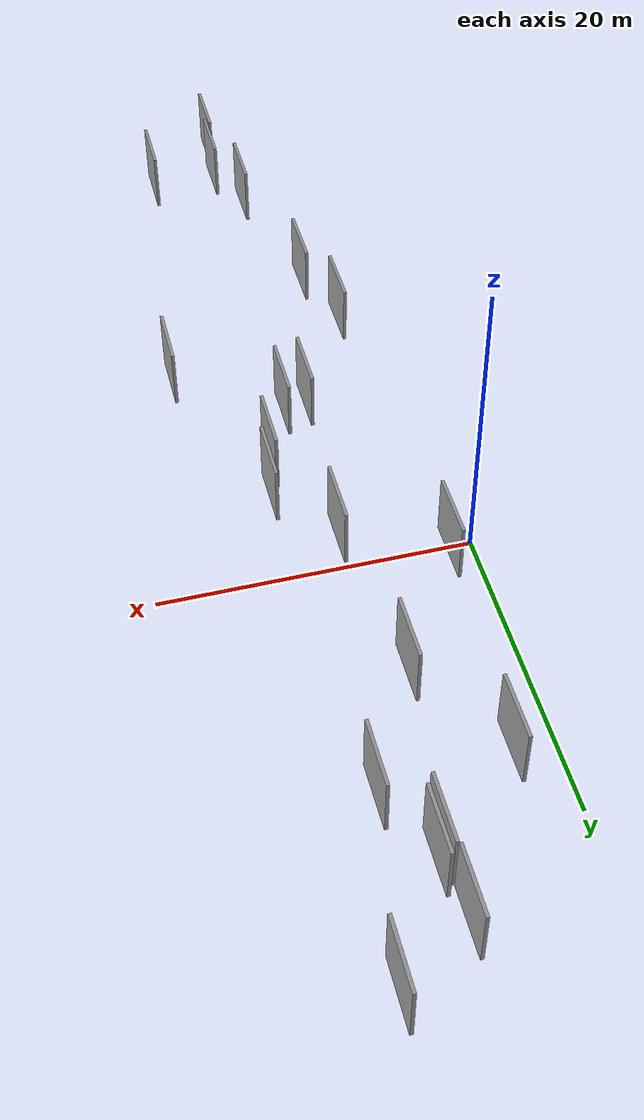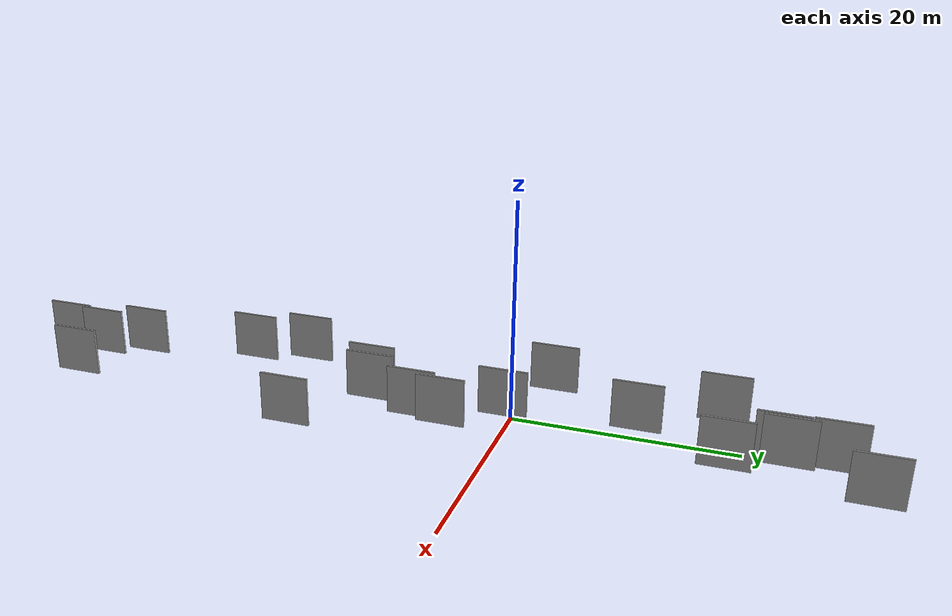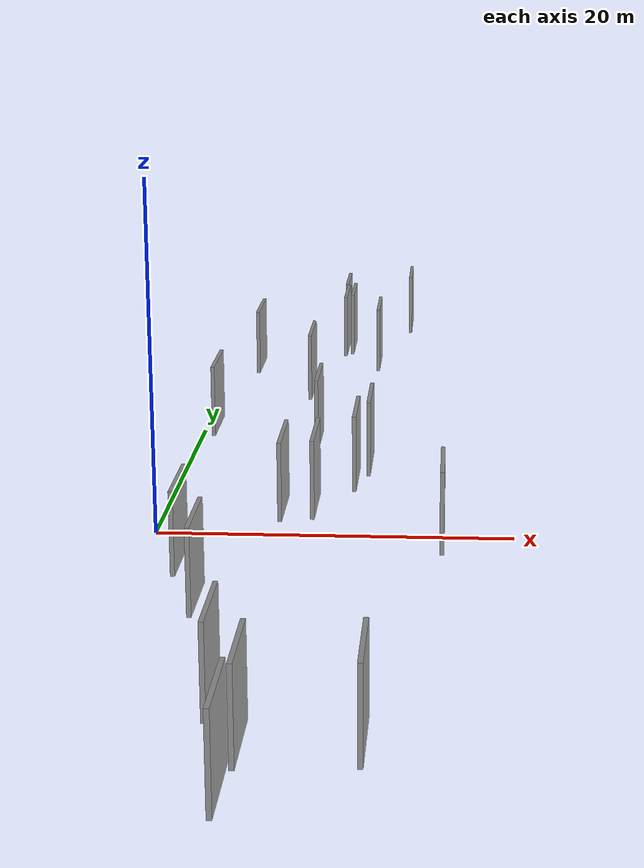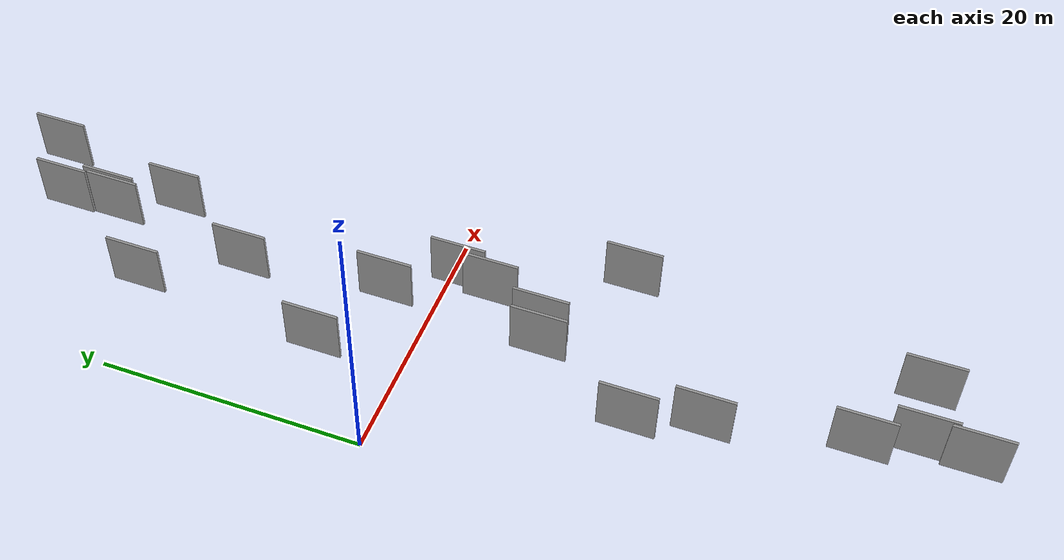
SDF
<sdf version="1.6">
 <world name="default">
  <scene>
   <sky><clouds><speed>12</speed></clouds></sky>
   <ambient>0.4 0.4 0.4 1</ambient>
   <background>0.7 0.7 0.7 1</background>
   <shadows>1</shadows>
  </scene>
  <gravity>0 0 -9.8066</gravity>
  <magnetic_field>6e-06 2.3e-05 -4.2e-05</magnetic_field>
  <physics default="0" name="default_physics" type="ode">
   <ode>
    <solver>
     <type>quick</type>
     <iters>10</iters>
     <sor>1.0</sor>
     <use_dynamic_moi_rescaling>0</use_dynamic_moi_rescaling>
    </solver>
    <constraints>
     <cfm>0</cfm>
     <erp>0.2</erp>
     <contact_max_correcting_vel>100</contact_max_correcting_vel>
     <contact_surface_layer>0.001</contact_surface_layer>
    </constraints>
   </ode>
   <max_step_size>0.004</max_step_size>
   <real_time_factor>1</real_time_factor>
   <real_time_update_rate>250</real_time_update_rate>
  </physics>
  <light name="sun" type="directional">
   <pose>0 0 10 0 0 0</pose>
   <diffuse>0.8 0.8 0.8 1</diffuse>
   <specular>0.2 0.2 0.2 1</specular>
   <attenuation>
    <range>1000</range>
    <constant>0.9</constant>
    <linear>0.01</linear>
    <quadratic>0.001</quadratic>
   </attenuation>
   <direction>-0.5 0.1 -0.9</direction>
  </light>
  <model name="grey_wall_1">
   <static>1</static>
   <pose>9.3334 23.1109 5.0 0.000000 0.000000 1.570796</pose>
   <link name="link">
    <pose>0 0 2.00 0 0 0</pose>
    <collision name="collision"><geometry><box><size>4.00 0.2 4.00</size></box></geometry></collision>
    <visual name="visual">
     <cast_shadows>0</cast_shadows>
     <geometry><box><size>4.00 0.2 4.00</size></box></geometry>
     <material>
      <script>
       <uri>model://grey_wall/materials/scripts</uri>
       <uri>model://grey_wall/materials/textures</uri>
       <name>vrc/grey_wall</name>
      </script>
     </material>
    </visual>
   </link>
  </model>
  <model name="grey_wall_2">
   <static>1</static>
   <pose>3.0269 4.4462 5.0 0.000000 0.000000 1.570796</pose>
   <link name="link">
    <pose>0 0 2.00 0 0 0</pose>
    <collision name="collision"><geometry><box><size>4.00 0.2 4.00</size></box></geometry></collision>
    <visual name="visual">
     <cast_shadows>0</cast_shadows>
     <geometry><box><size>4.00 0.2 4.00</size></box></geometry>
     <material>
      <script>
       <uri>model://grey_wall/materials/scripts</uri>
       <uri>model://grey_wall/materials/textures</uri>
       <name>vrc/grey_wall</name>
      </script>
     </material>
    </visual>
   </link>
  </model>
  <model name="grey_wall_3">
   <static>1</static>
   <pose>9.0655 -35.3267 5.0 0.000000 0.000000 1.570796</pose>
   <link name="link">
    <pose>0 0 2.00 0 0 0</pose>
    <collision name="collision"><geometry><box><size>4.00 0.2 4.00</size></box></geometry></collision>
    <visual name="visual">
     <cast_shadows>0</cast_shadows>
     <geometry><box><size>4.00 0.2 4.00</size></box></geometry>
     <material>
      <script>
       <uri>model://grey_wall/materials/scripts</uri>
       <uri>model://grey_wall/materials/textures</uri>
       <name>vrc/grey_wall</name>
      </script>
     </material>
    </visual>
   </link>
  </model>
  <model name="grey_wall_4">
   <static>1</static>
   <pose>9.1874 27.1675 5.0 0.000000 0.000000 1.570796</pose>
   <link name="link">
    <pose>0 0 2.00 0 0 0</pose>
    <collision name="collision"><geometry><box><size>4.00 0.2 4.00</size></box></geometry></collision>
    <visual name="visual">
     <cast_shadows>0</cast_shadows>
     <geometry><box><size>4.00 0.2 4.00</size></box></geometry>
     <material>
      <script>
       <uri>model://grey_wall/materials/scripts</uri>
       <uri>model://grey_wall/materials/textures</uri>
       <name>vrc/grey_wall</name>
      </script>
     </material>
    </visual>
   </link>
  </model>
  <model name="grey_wall_5">
   <static>1</static>
   <pose>11.6556 19.3275 5.0 0.000000 0.000000 1.570796</pose>
   <link name="link">
    <pose>0 0 2.00 0 0 0</pose>
    <collision name="collision"><geometry><box><size>4.00 0.2 4.00</size></box></geometry></collision>
    <visual name="visual">
     <cast_shadows>0</cast_shadows>
     <geometry><box><size>4.00 0.2 4.00</size></box></geometry>
     <material>
      <script>
       <uri>model://grey_wall/materials/scripts</uri>
       <uri>model://grey_wall/materials/textures</uri>
       <name>vrc/grey_wall</name>
      </script>
     </material>
    </visual>
   </link>
  </model>
  <model name="grey_wall_6">
   <static>1</static>
   <pose>16.0989 -13.9752 5.0 0.000000 0.000000 1.570796</pose>
   <link name="link">
    <pose>0 0 2.00 0 0 0</pose>
    <collision name="collision"><geometry><box><size>4.00 0.2 4.00</size></box></geometry></collision>
    <visual name="visual">
     <cast_shadows>0</cast_shadows>
     <geometry><box><size>4.00 0.2 4.00</size></box></geometry>
     <material>
      <script>
       <uri>model://grey_wall/materials/scripts</uri>
       <uri>model://grey_wall/materials/textures</uri>
       <name>vrc/grey_wall</name>
      </script>
     </material>
    </visual>
   </link>
  </model>
  <model name="grey_wall_7">
   <static>1</static>
   <pose>13.4439 29.8319 5.0 0.000000 0.000000 1.570796</pose>
   <link name="link">
    <pose>0 0 2.00 0 0 0</pose>
    <collision name="collision"><geometry><box><size>4.00 0.2 4.00</size></box></geometry></collision>
    <visual name="visual">
     <cast_shadows>0</cast_shadows>
     <geometry><box><size>4.00 0.2 4.00</size></box></geometry>
     <material>
      <script>
       <uri>model://grey_wall/materials/scripts</uri>
       <uri>model://grey_wall/materials/textures</uri>
       <name>vrc/grey_wall</name>
      </script>
     </material>
    </visual>
   </link>
  </model>
  <model name="grey_wall_8">
   <static>1</static>
   <pose>9.0660 1.7248 5.0 0.000000 0.000000 1.570796</pose>
   <link name="link">
    <pose>0 0 2.00 0 0 0</pose>
    <collision name="collision"><geometry><box><size>4.00 0.2 4.00</size></box></geometry></collision>
    <visual name="visual">
     <cast_shadows>0</cast_shadows>
     <geometry><box><size>4.00 0.2 4.00</size></box></geometry>
     <material>
      <script>
       <uri>model://grey_wall/materials/scripts</uri>
       <uri>model://grey_wall/materials/textures</uri>
       <name>vrc/grey_wall</name>
      </script>
     </material>
    </visual>
   </link>
  </model>
  <model name="grey_wall_9">
   <static>1</static>
   <pose>12.1372 -2.4791 5.0 0.000000 0.000000 1.570796</pose>
   <link name="link">
    <pose>0 0 2.00 0 0 0</pose>
    <collision name="collision"><geometry><box><size>4.00 0.2 4.00</size></box></geometry></collision>
    <visual name="visual">
     <cast_shadows>0</cast_shadows>
     <geometry><box><size>4.00 0.2 4.00</size></box></geometry>
     <material>
      <script>
       <uri>model://grey_wall/materials/scripts</uri>
       <uri>model://grey_wall/materials/textures</uri>
       <name>vrc/grey_wall</name>
      </script>
     </material>
    </visual>
   </link>
  </model>
  <model name="grey_wall_10">
   <static>1</static>
   <pose>5.5662 -21.9198 5.0 0.000000 0.000000 1.570796</pose>
   <link name="link">
    <pose>0 0 2.00 0 0 0</pose>
    <collision name="collision"><geometry><box><size>4.00 0.2 4.00</size></box></geometry></collision>
    <visual name="visual">
     <cast_shadows>0</cast_shadows>
     <geometry><box><size>4.00 0.2 4.00</size></box></geometry>
     <material>
      <script>
       <uri>model://grey_wall/materials/scripts</uri>
       <uri>model://grey_wall/materials/textures</uri>
       <name>vrc/grey_wall</name>
      </script>
     </material>
    </visual>
   </link>
  </model>
  <model name="grey_wall_11">
   <static>1</static>
   <pose>8.7674 -38.7767 5.0 0.000000 0.000000 1.570796</pose>
   <link name="link">
    <pose>0 0 2.00 0 0 0</pose>
    <collision name="collision"><geometry><box><size>4.00 0.2 4.00</size></box></geometry></collision>
    <visual name="visual">
     <cast_shadows>0</cast_shadows>
     <geometry><box><size>4.00 0.2 4.00</size></box></geometry>
     <material>
      <script>
       <uri>model://grey_wall/materials/scripts</uri>
       <uri>model://grey_wall/materials/textures</uri>
       <name>vrc/grey_wall</name>
      </script>
     </material>
    </visual>
   </link>
  </model>
  <model name="grey_wall_12">
   <static>1</static>
   <pose>13.5094 -35.0301 5.0 0.000000 0.000000 1.570796</pose>
   <link name="link">
    <pose>0 0 2.00 0 0 0</pose>
    <collision name="collision"><geometry><box><size>4.00 0.2 4.00</size></box></geometry></collision>
    <visual name="visual">
     <cast_shadows>0</cast_shadows>
     <geometry><box><size>4.00 0.2 4.00</size></box></geometry>
     <material>
      <script>
       <uri>model://grey_wall/materials/scripts</uri>
       <uri>model://grey_wall/materials/textures</uri>
       <name>vrc/grey_wall</name>
      </script>
     </material>
    </visual>
   </link>
  </model>
  <model name="grey_wall_13">
   <static>1</static>
   <pose>11.5421 -5.1013 5.0 0.000000 0.000000 1.570796</pose>
   <link name="link">
    <pose>0 0 2.00 0 0 0</pose>
    <collision name="collision"><geometry><box><size>4.00 0.2 4.00</size></box></geometry></collision>
    <visual name="visual">
     <cast_shadows>0</cast_shadows>
     <geometry><box><size>4.00 0.2 4.00</size></box></geometry>
     <material>
      <script>
       <uri>model://grey_wall/materials/scripts</uri>
       <uri>model://grey_wall/materials/textures</uri>
       <name>vrc/grey_wall</name>
      </script>
     </material>
    </visual>
   </link>
  </model>
  <model name="grey_wall_14">
   <static>1</static>
   <pose>4.1350 -17.2834 5.0 0.000000 0.000000 1.570796</pose>
   <link name="link">
    <pose>0 0 2.00 0 0 0</pose>
    <collision name="collision"><geometry><box><size>4.00 0.2 4.00</size></box></geometry></collision>
    <visual name="visual">
     <cast_shadows>0</cast_shadows>
     <geometry><box><size>4.00 0.2 4.00</size></box></geometry>
     <material>
      <script>
       <uri>model://grey_wall/materials/scripts</uri>
       <uri>model://grey_wall/materials/textures</uri>
       <name>vrc/grey_wall</name>
      </script>
     </material>
    </visual>
   </link>
  </model>
  <model name="grey_wall_15">
   <static>1</static>
   <pose>4.0252 18.3982 5.0 0.000000 0.000000 1.570796</pose>
   <link name="link">
    <pose>0 0 2.00 0 0 0</pose>
    <collision name="collision"><geometry><box><size>4.00 0.2 4.00</size></box></geometry></collision>
    <visual name="visual">
     <cast_shadows>0</cast_shadows>
     <geometry><box><size>4.00 0.2 4.00</size></box></geometry>
     <material>
      <script>
       <uri>model://grey_wall/materials/scripts</uri>
       <uri>model://grey_wall/materials/textures</uri>
       <name>vrc/grey_wall</name>
      </script>
     </material>
    </visual>
   </link>
  </model>
  <model name="grey_wall_16">
   <static>1</static>
   <pose>7.8493 12.1764 5.0 0.000000 0.000000 1.570796</pose>
   <link name="link">
    <pose>0 0 2.00 0 0 0</pose>
    <collision name="collision"><geometry><box><size>4.00 0.2 4.00</size></box></geometry></collision>
    <visual name="visual">
     <cast_shadows>0</cast_shadows>
     <geometry><box><size>4.00 0.2 4.00</size></box></geometry>
     <material>
      <script>
       <uri>model://grey_wall/materials/scripts</uri>
       <uri>model://grey_wall/materials/textures</uri>
       <name>vrc/grey_wall</name>
      </script>
     </material>
    </visual>
   </link>
  </model>
  <model name="grey_wall_17">
   <static>1</static>
   <pose>9.7446 -9.3925 5.0 0.000000 0.000000 1.570796</pose>
   <link name="link">
    <pose>0 0 2.00 0 0 0</pose>
    <collision name="collision"><geometry><box><size>4.00 0.2 4.00</size></box></geometry></collision>
    <visual name="visual">
     <cast_shadows>0</cast_shadows>
     <geometry><box><size>4.00 0.2 4.00</size></box></geometry>
     <material>
      <script>
       <uri>model://grey_wall/materials/scripts</uri>
       <uri>model://grey_wall/materials/textures</uri>
       <name>vrc/grey_wall</name>
      </script>
     </material>
    </visual>
   </link>
  </model>
  <model name="grey_wall_18">
   <static>1</static>
   <pose>7.5764 -31.7568 5.0 0.000000 0.000000 1.570796</pose>
   <link name="link">
    <pose>0 0 2.00 0 0 0</pose>
    <collision name="collision"><geometry><box><size>4.00 0.2 4.00</size></box></geometry></collision>
    <visual name="visual">
     <cast_shadows>0</cast_shadows>
     <geometry><box><size>4.00 0.2 4.00</size></box></geometry>
     <material>
      <script>
       <uri>model://grey_wall/materials/scripts</uri>
       <uri>model://grey_wall/materials/textures</uri>
       <name>vrc/grey_wall</name>
      </script>
     </material>
    </visual>
   </link>
  </model>
  <model name="grey_wall_19">
   <static>1</static>
   <pose>8.1858 -9.8047 5.0 0.000000 0.000000 1.570796</pose>
   <link name="link">
    <pose>0 0 2.00 0 0 0</pose>
    <collision name="collision"><geometry><box><size>4.00 0.2 4.00</size></box></geometry></collision>
    <visual name="visual">
     <cast_shadows>0</cast_shadows>
     <geometry><box><size>4.00 0.2 4.00</size></box></geometry>
     <material>
      <script>
       <uri>model://grey_wall/materials/scripts</uri>
       <uri>model://grey_wall/materials/textures</uri>
       <name>vrc/grey_wall</name>
      </script>
     </material>
    </visual>
   </link>
  </model>
  <model name="grey_wall_20">
   <static>1</static>
   <pose>9.7452 23.6496 5.0 0.000000 0.000000 1.570796</pose>
   <link name="link">
    <pose>0 0 2.00 0 0 0</pose>
    <collision name="collision"><geometry><box><size>4.00 0.2 4.00</size></box></geometry></collision>
    <visual name="visual">
     <cast_shadows>0</cast_shadows>
     <geometry><box><size>4.00 0.2 4.00</size></box></geometry>
     <material>
      <script>
       <uri>model://grey_wall/materials/scripts</uri>
       <uri>model://grey_wall/materials/textures</uri>
       <name>vrc/grey_wall</name>
      </script>
     </material>
    </visual>
   </link>
  </model>
 </world>
</sdf>
